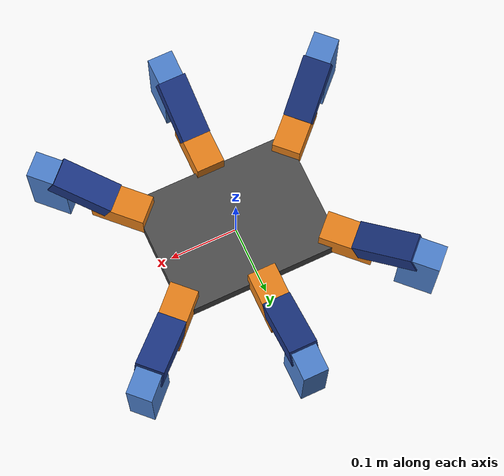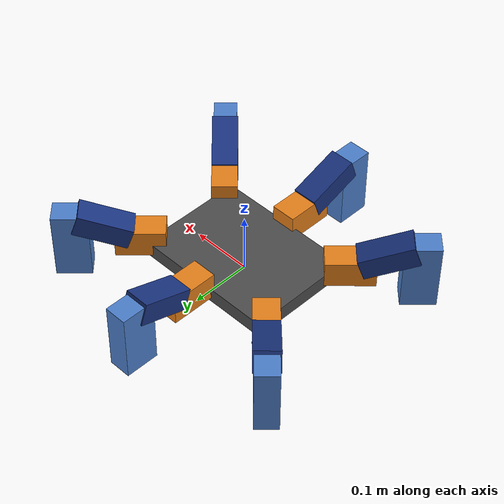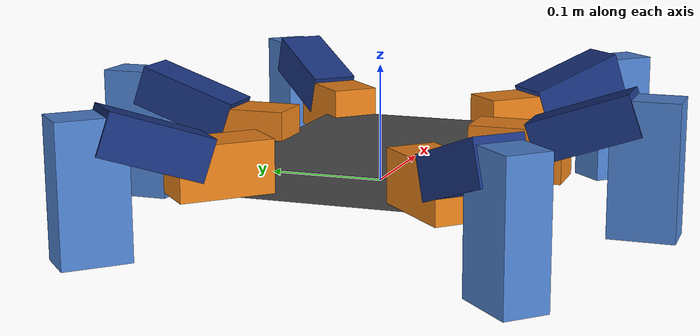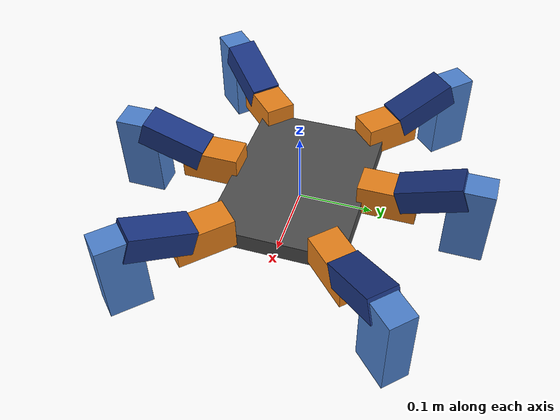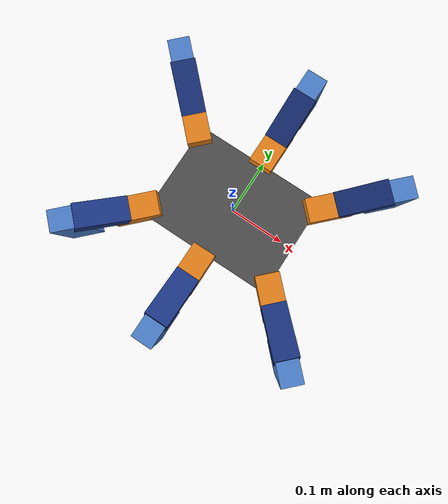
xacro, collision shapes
<?xml version="1.0"?>
<robot xmlns:xacro="http://www.ros.org/wiki/xacro" name="nox">
  <xacro:include filename="$(find rumblex_description)/urdf/materials.xacro"/>
  <xacro:include filename="$(find rumblex_description)/urdf/mesh_leg.xacro"/>
  <xacro:include filename="$(find rumblex_description)/urdf/ros2_control.xacro"/>
  <xacro:property name="mesh_directory" value="package://rumblex_description/meshes/nox"/>
  <xacro:property name="coxa_height" value="0.0525"/>
  <xacro:arg name="use_sim" default="false"/>

  <xacro:if value="$(arg use_sim)">
    <gazebo><plugin filename="gz_ros2_control-system" name="gz_ros2_control::GazeboSimROS2ControlPlugin"><parameters>$(find rumblex_gazebo)/config/nox/joint_controllers.yaml</parameters></plugin></gazebo>
    <xacro:rumblex_ros2_control/>
  </xacro:if>

  <link name="base_link">
    <visual><origin xyz="0 0 0"/><geometry><mesh filename="${mesh_directory}/assembly_body_servo.stl" scale="0.001 0.001 0.001"/></geometry><material name="dark_gray"/></visual>
    <collision><origin xyz="0 0 0.020"/><geometry><box size="0.240 0.180 0.025"/></geometry></collision>
    <inertial><origin xyz="0 0 0.045"/><mass value="0.80"/><inertia ixx="0.003" ixy="0" ixz="0" iyy="0.004" iyz="0" izz="0.005"/></inertial>
  </link>

  <!-- Match the bottom-plate IMU mounting frame in the primitive Nox model. -->
  <joint name="imu_joint" type="fixed">
    <parent link="base_link"/>
    <child link="imu_link"/>
    <origin xyz="0 0 0.0075" rpy="0 0 0"/>
  </joint>
  <link name="imu_link"/>

  <xacro:mesh_hexapod_leg prefix="left_front" cx="0.114765879310439" cy="0.069765879310439" psi_deg="45.0"/>
  <xacro:mesh_hexapod_leg prefix="left_mid" cx="0.000" cy="0.095175" psi_deg="90.0"/>
  <xacro:mesh_hexapod_leg prefix="left_back" cx="-0.114765879310439" cy="0.069765879310439" psi_deg="135.0"/>
  <xacro:mesh_hexapod_leg prefix="right_front" cx="0.114765879310439" cy="-0.069765879310439" psi_deg="-45.0"/>
  <xacro:mesh_hexapod_leg prefix="right_mid" cx="0.000" cy="-0.095175" psi_deg="-90.0"/>
  <xacro:mesh_hexapod_leg prefix="right_back" cx="-0.114765879310439" cy="-0.069765879310439" psi_deg="-135.0"/>

  <joint name="head_yaw_joint" type="revolute">
    <parent link="base_link"/>
    <child link="head_yaw_link"/>
    <origin xyz="0.140175 0 0.0525" rpy="${pi} 0 0"/>
    <!-- The flipped joint frame needs -Z for positive yaw about torso +Z. -->
    <axis xyz="0 0 -1"/>
    <limit lower="${-30*pi/180}" upper="${30*pi/180}" effort="1.5" velocity="4.0"/>
  </joint>
  <link name="head_yaw_link">
    <visual>
      <origin xyz="0.0295 0 0.0185" rpy="${-pi/2} 0 ${pi/2}"/>
      <geometry><mesh filename="${mesh_directory}/assembly_coxa.stl" scale="0.001 0.001 0.001"/></geometry>
      <material name="dark_gray"/>
    </visual>
    <inertial><mass value="0.001"/><inertia ixx="1e-8" ixy="0" ixz="0" iyy="1e-8" iyz="0" izz="1e-8"/></inertial>
  </link>
  <joint name="head_pitch_joint" type="revolute">
    <parent link="head_yaw_link"/>
    <child link="head_pitch_link"/>
    <origin xyz="0.053131385358869 -0.0185 0.0075064241990335" rpy="${pi/2} -1.5576858731134 ${-pi}"/>
    <axis xyz="0 0 -1"/>
    <limit lower="${-20*pi/180}" upper="${20*pi/180}" effort="1.5" velocity="4.0"/>
  </joint>
  <link name="head_pitch_link">
    <visual>
      <origin xyz="-0.035 0 0.00425" rpy="${pi/2} 0 ${pi/2}"/>
      <geometry><mesh filename="${mesh_directory}/assembly_head.stl" scale="0.001 0.001 0.001"/></geometry>
      <material name="dark_gray"/>
    </visual>
    <inertial><mass value="0.001"/><inertia ixx="1e-8" ixy="0" ixz="0" iyy="1e-8" iyz="0" izz="1e-8"/></inertial>
  </link>
  <!-- Nominal beam origin at the midpoint of the two CAD lidar front faces.
       CAD +X maps to head_pitch_link +Y through the visual's rotation. -->
  <joint name="lidar_joint" type="fixed">
    <parent link="head_pitch_link"/>
    <child link="lidar_link"/>
    <origin xyz="-0.020194 0.063636 0.018754" rpy="0 0 ${pi/2}"/>
  </joint>
  <link name="lidar_link"/>
</robot>

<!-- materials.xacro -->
<robot xmlns:xacro="http://www.ros.org/wiki/xacro">

  <material name="dark_gray">
    <color rgba="0.3 0.3 0.3 1.0"/>
  </material>

  <material name="creamy_white">
    <color rgba="0.94 0.91 0.82 1.0"/>
  </material>

  <material name="orange">
    <color rgba="0.9 0.5 0.1 1.0"/>
  </material>

  <material name="dark_blue">
    <color rgba="0.1 0.2 0.5 1.0"/>
  </material>

  <material name="light_blue">
    <color rgba="0.3 0.5 0.8 1.0"/>
  </material>

  <material name="black">
    <color rgba="0.05 0.05 0.05 1.0"/>
  </material>

  <material name="red">
    <color rgba="0.8 0.1 0.1 1.0"/>
  </material>

</robot>

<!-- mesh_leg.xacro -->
<robot xmlns:xacro="http://www.ros.org/wiki/xacro">

  <xacro:macro name="mesh_hexapod_leg" params="prefix cx cy psi_deg">
    <xacro:property name="mount_yaw" value="${psi_deg * pi / 180.0}"/>
    <xacro:property name="mesh_scale" value="0.001 0.001 0.001"/>

    <joint name="${prefix}_coxa_joint" type="revolute">
      <parent link="base_link"/>
      <child link="${prefix}_coxa_link"/>
      <origin xyz="${cx} ${cy} ${coxa_height}" rpy="${pi} 0 ${mount_yaw}"/>
      <axis xyz="0 0 1"/>
      <limit lower="${-60 * pi / 180}" upper="${60 * pi / 180}" effort="3.0" velocity="6.0"/>
      <dynamics damping="0.1" friction="0.05"/>
    </joint>
    <link name="${prefix}_coxa_link">
      <visual>
        <origin xyz="0.0295 0 0.0185" rpy="${-pi / 2} 0 ${pi / 2}"/>
        <geometry><mesh filename="${mesh_directory}/assembly_coxa.stl" scale="${mesh_scale}"/></geometry>
        <material name="orange"/>
      </visual>
      <collision><origin xyz="0.0265656926794 0 0.0170032120995"/><geometry><box size="0.0781313853589 0.041 0.043993575801"/></geometry></collision>
      <inertial><origin xyz="0.0265656926794 0 0.0170032120995"/><mass value="0.12"/><inertia ixx="3.0e-05" ixy="0" ixz="0" iyy="3.0e-05" iyz="0" izz="3.0e-05"/></inertial>
    </link>

    <joint name="${prefix}_femur_joint" type="revolute">
      <parent link="${prefix}_coxa_link"/><child link="${prefix}_femur_link"/>
      <origin xyz="0.053131385358869 -0.0185 0.0075064241990335" rpy="${pi / 2} -0.51048832191678 ${pi}"/><axis xyz="0 0 1"/>
      <limit lower="${-30 * pi / 180}" upper="${90 * pi / 180}" effort="3.0" velocity="6.0"/>
      <dynamics damping="0.1" friction="0.05"/>
    </joint>
    <link name="${prefix}_femur_link">
      <visual>
        <origin xyz="-0.035 0 0.00425" rpy="${pi / 2} 0 ${pi / 2}"/>
        <geometry><mesh filename="${mesh_directory}/assembly_femur.stl" scale="${mesh_scale}"/></geometry>
        <material name="dark_blue"/>
      </visual>
      <!-- Box X follows the hip-to-knee line; bounds include 0.1 mm per face. -->
      <collision><origin xyz="-0.0321686833997 0.00184637341052 0.0185" rpy="0 0 -0.173951227164"/><geometry><box size="0.0882306030331 0.0357824108515 0.0412"/></geometry></collision>
      <inertial><origin xyz="-0.0325302233968 0.00458351350954 0.0185"/><mass value="0.12"/><inertia ixx="4.0e-05" ixy="0" ixz="0" iyy="4.0e-05" iyz="0" izz="4.0e-05"/></inertial>
    </link>

    <joint name="${prefix}_tibia_joint" type="revolute">
      <parent link="${prefix}_femur_link"/><child link="${prefix}_tibia_link"/>
      <origin xyz="-0.062560446793669 0.010993575800966 0.037" rpy="${-pi} 0 2.631104331673"/><axis xyz="0 0 -1"/>
      <limit lower="${-90 * pi / 180}" upper="${90 * pi / 180}" effort="3.0" velocity="6.0"/>
      <dynamics damping="0.1" friction="0.05"/>
    </joint>
    <link name="${prefix}_tibia_link">
      <visual>
        <origin xyz="-0.035 0 0.00425" rpy="${pi / 2} 0 ${pi / 2}"/>
        <geometry><mesh filename="${mesh_directory}/assembly_tibia.stl" scale="${mesh_scale}"/></geometry>
        <material name="light_blue"/>
      </visual>
      <collision><origin xyz="0.0179625 0.03775 0.0185"/><geometry><box size="0.055925 0.114 0.037"/></geometry></collision>
      <inertial><origin xyz="0.0179625 0.03775 0.0185"/><mass value="0.10"/><inertia ixx="4.0e-05" ixy="0" ixz="0" iyy="4.0e-05" iyz="0" izz="4.0e-05"/></inertial>
    </link>

    <joint name="${prefix}_foot_joint" type="fixed"><parent link="${prefix}_tibia_link"/><child link="${prefix}_foot"/><origin xyz="0.028425 0.09225 0.01825" rpy="${-pi / 2} ${pi / 2} 0"/></joint>
    <link name="${prefix}_foot">
      <collision><geometry><sphere radius="0.006"/></geometry></collision>
      <inertial><mass value="0.005"/><inertia ixx="7.2e-08" ixy="0" ixz="0" iyy="7.2e-08" iyz="0" izz="7.2e-08"/></inertial>
    </link>
    <gazebo reference="${prefix}_foot"><mu1>1.0</mu1><mu2>1.0</mu2></gazebo>
  </xacro:macro>
</robot>
